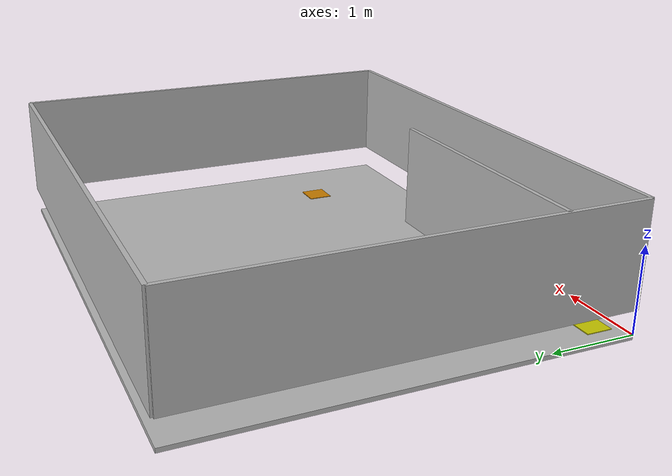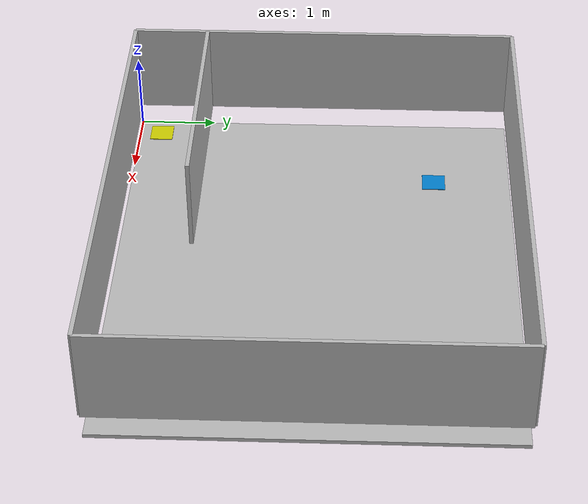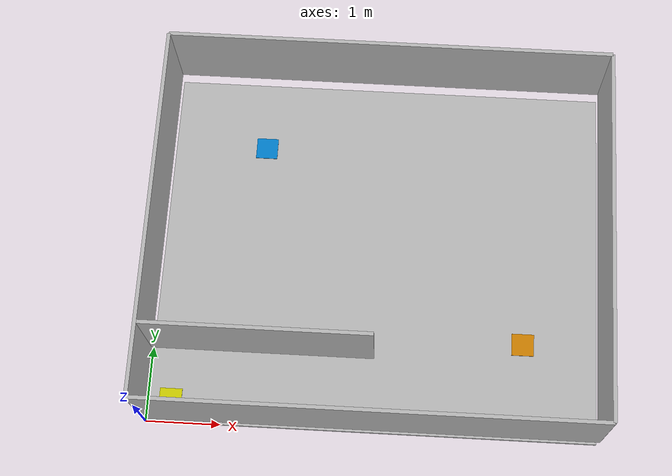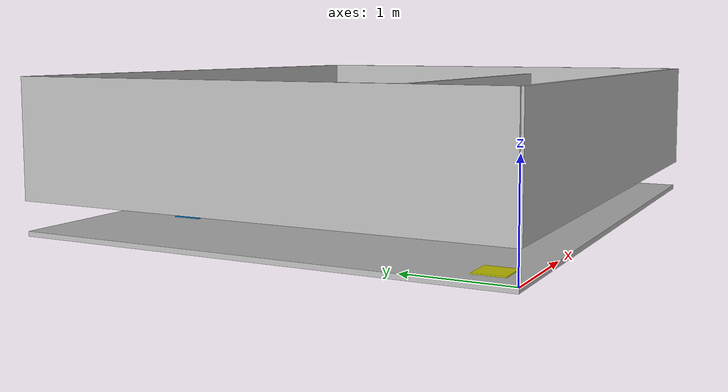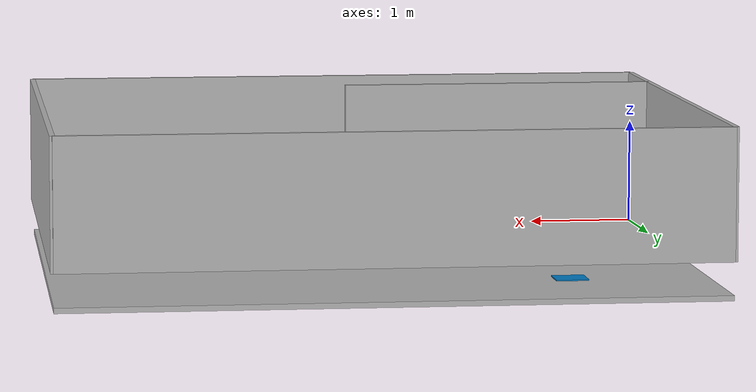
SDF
<?xml version="1.0"?>
<sdf version="1.6">
  <model name="competition_arena">
    <static>true</static>
    <link name="floor">
      <collision name="floor_collision">
        <geometry><box><size>6.0 5.0 0.05</size></box></geometry>
      </collision>
      <visual name="floor_visual">
        <geometry><box><size>6.0 5.0 0.05</size></box></geometry>
        <material><script>Gazebo/Grey</script></material>
      </visual>
      <pose>3.0 2.5 -0.025 0 0 0</pose>
    </link>

    <!-- North wall: y=5.0, x=0~6, 0.3m~1.5m -->
    <link name="wall_north">
      <collision name="wall_north_collision">
        <geometry><box><size>6.0 0.05 1.2</size></box></geometry>
      </collision>
      <visual name="wall_north_visual">
        <geometry><box><size>6.0 0.05 1.2</size></box></geometry>
        <material><script>Gazebo/White</script></material>
      </visual>
      <pose>3.0 5.0 0.9 0 0 0</pose>
    </link>

    <!-- South wall: y=0, x=0~6 -->
    <link name="wall_south">
      <collision name="wall_south_collision">
        <geometry><box><size>6.0 0.05 1.2</size></box></geometry>
      </collision>
      <visual name="wall_south_visual">
        <geometry><box><size>6.0 0.05 1.2</size></box></geometry>
        <material><script>Gazebo/White</script></material>
      </visual>
      <pose>3.0 0.0 0.9 0 0 0</pose>
    </link>

    <!-- East wall: x=6.0, y=0~5 -->
    <link name="wall_east">
      <collision name="wall_east_collision">
        <geometry><box><size>0.05 5.0 1.2</size></box></geometry>
      </collision>
      <visual name="wall_east_visual">
        <geometry><box><size>0.05 5.0 1.2</size></box></geometry>
        <material><script>Gazebo/White</script></material>
      </visual>
      <pose>6.0 2.5 0.9 0 0 0</pose>
    </link>

    <!-- West wall: x=0, y=0~5 -->
    <link name="wall_west">
      <collision name="wall_west_collision">
        <geometry><box><size>0.05 5.0 1.2</size></box></geometry>
      </collision>
      <visual name="wall_west_visual">
        <geometry><box><size>0.05 5.0 1.2</size></box></geometry>
        <material><script>Gazebo/White</script></material>
      </visual>
      <pose>0.0 2.5 0.9 0 0 0</pose>
    </link>

    <!-- Wall segment 1: y=96cm (0.96m), x=0~3m, internal -->
    <link name="wall_internal_1">
      <collision name="wall_internal_1_collision">
        <geometry><box><size>3.0 0.05 1.2</size></box></geometry>
      </collision>
      <visual name="wall_internal_1_visual">
        <geometry><box><size>3.0 0.05 1.2</size></box></geometry>
        <material><script>Gazebo/White</script></material>
      </visual>
      <pose>1.5 0.96 0.9 0 0 0</pose>
    </link>

    <!-- Ground plane labels -->
    <link name="label_h">
      <visual name="label_h_visual">
        <geometry><box><size>0.3 0.3 0.01</size></box></geometry>
        <material><ambient>0.8 0.8 0 1</ambient><diffuse>0.8 0.8 0 1</diffuse></material>
      </visual>
      <pose>0.3 0.3 0.03 0 0 0</pose>
    </link>

    <link name="label_a">
      <visual name="label_a_visual">
        <geometry><box><size>0.3 0.3 0.01</size></box></geometry>
        <material><ambient>0 0.5 0.8 1</ambient><diffuse>0 0.5 0.8 1</diffuse></material>
      </visual>
      <pose>1.3 4.0 0.03 0 0 0</pose>
    </link>

    <link name="label_b">
      <visual name="label_b_visual">
        <geometry><box><size>0.3 0.3 0.01</size></box></geometry>
        <material><ambient>0.8 0.5 0 1</ambient><diffuse>0.8 0.5 0 1</diffuse></material>
      </visual>
      <pose>5.0 1.3 0.03 0 0 0</pose>
    </link>
  </model>
</sdf>
